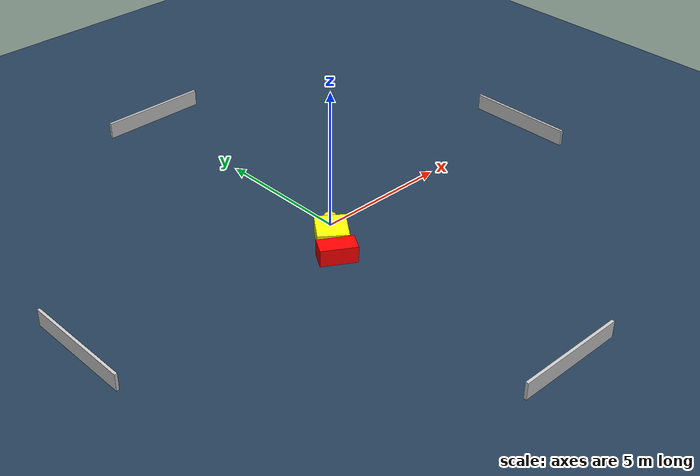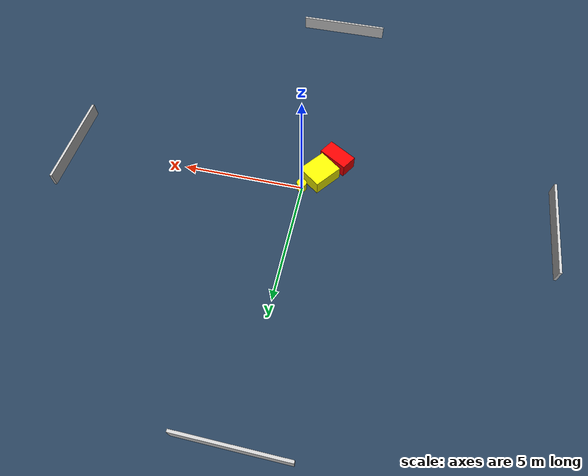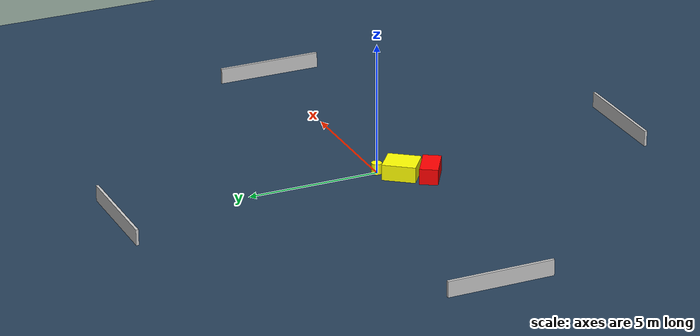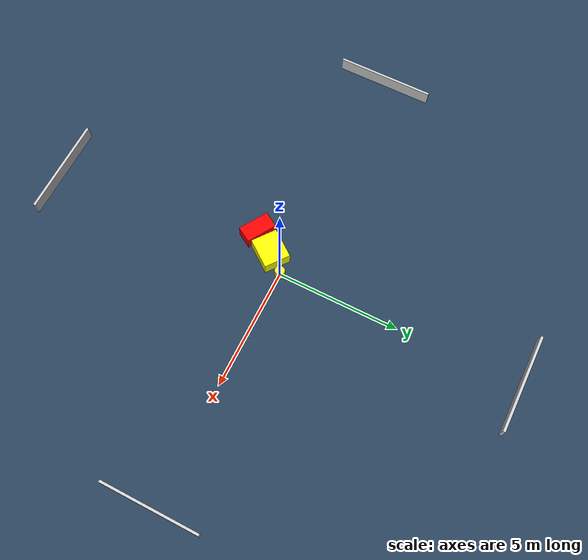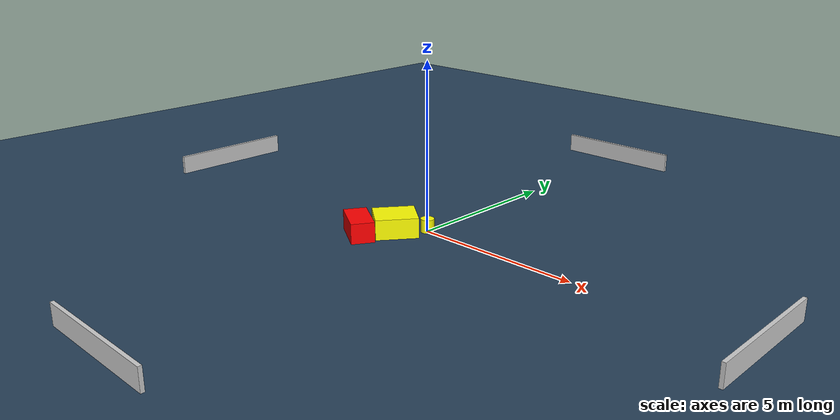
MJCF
<?xml version="1.0" ?>
<mujoco model="generated_environment">
  <option timestep="0.01" integrator="RK4" cone="elliptic"/>
  <default>
    <geom density="1"/>
  </default>
  <asset>
    <texture builtin="gradient" height="3072" name="skybox" rgb1="0.3 0.5 0.7" rgb2="0 0 0" type="skybox" width="512"/>
    <texture builtin="checker" height="300" name="groundplane" rgb1="0.2 0.3 0.4" rgb2="0.1 0.2 0.3" type="2d" width="300"/>
    <material name="groundplane" reflectance="0.2" texrepeat="5 5" texture="groundplane"/>
  </asset>
  <worldbody>
    <light dir="0 0 -1" directional="true" pos="0 0 1.5"/>
    <geom condim="3" friction="0.5 0.005 0.001" material="groundplane" name="floor" pos="0 0 0" size="0 0 0.05" type="plane"/>
    <body name="walls">
      <geom name="wall_1" condim="4" pos="-10.0 0.0 0.3" rgba="0.800000011920929 0.800000011920929 0.800000011920929 1.0" size="0.05 2.0 0.3" type="box"/>
      <geom name="wall_2" condim="4" pos="10.0 0.0 0.3" rgba="0.800000011920929 0.800000011920929 0.800000011920929 1.0" size="0.05 2.0 0.3" type="box"/>
      <geom name="wall_3" condim="4" pos="0.0 -10.0 0.3" rgba="0.800000011920929 0.800000011920929 0.800000011920929 1.0" size="2.0 0.05 0.3" type="box"/>
      <geom name="wall_4" condim="4" pos="0.0 10.0 0.3" rgba="0.800000011920929 0.800000011920929 0.800000011920929 1.0" size="2.0 0.05 0.3" type="box"/>
    </body>
    <body name="robot">
      <joint name="joint_x" type="slide" pos="0 0 0" axis="1 0 0"/>
      <joint name="joint_y" type="slide" pos="0 0 0" axis="0 1 0"/>
      <geom name="robot" type="cylinder" pos="0.0 0.0 0.2" size="0.2 0.2 0.0" mass="5.0" friction="1.0 0.005 0.0001" condim="4" rgba="1.0 1.0 0.0 1.0"/>
    </body>
    <body name="obstacle_1_movable">
      <geom name="obstacle_1_movable" condim="4" pos="-0.6059292412662053 -0.7146560206768642 0.3" euler="0 0 322.861611019548" friction="0.0 0.005 0.001" rgba="1.0 1.0 0.0 1.0" size="0.5393567907536311 0.6221446904002323 0.3" type="box" mass="0.1"/>
      <joint type="free"/>
    </body>
    <body name="obstacle_2_static">
      <geom name="obstacle_2_static" condim="4" pos="-1.1850177770895585 -1.592668853533293 0.3" euler="0 0 238.84510953761531" friction="0.0 0.005 0.001" rgba="1.0 0.0 0.0 1.0" size="0.3417126043919386 0.6388904061898832 0.3" type="box"/>
    </body>
  </worldbody>
  <actuator>
    <motor name="actuator_x" joint="joint_x" gear="1" ctrlrange="-1 1"/>
    <motor name="actuator_y" joint="joint_y" gear="1" ctrlrange="-1 1"/>
  </actuator>
</mujoco>
